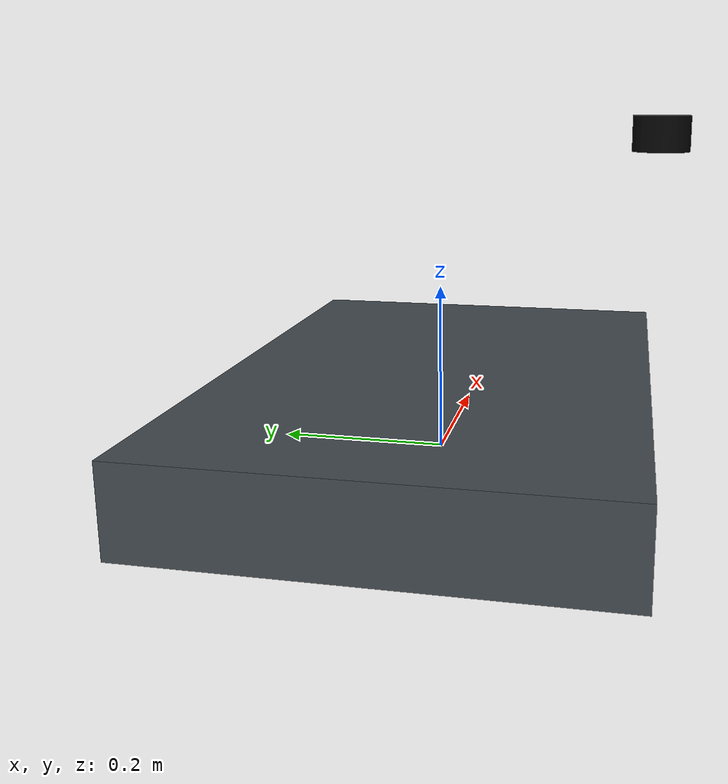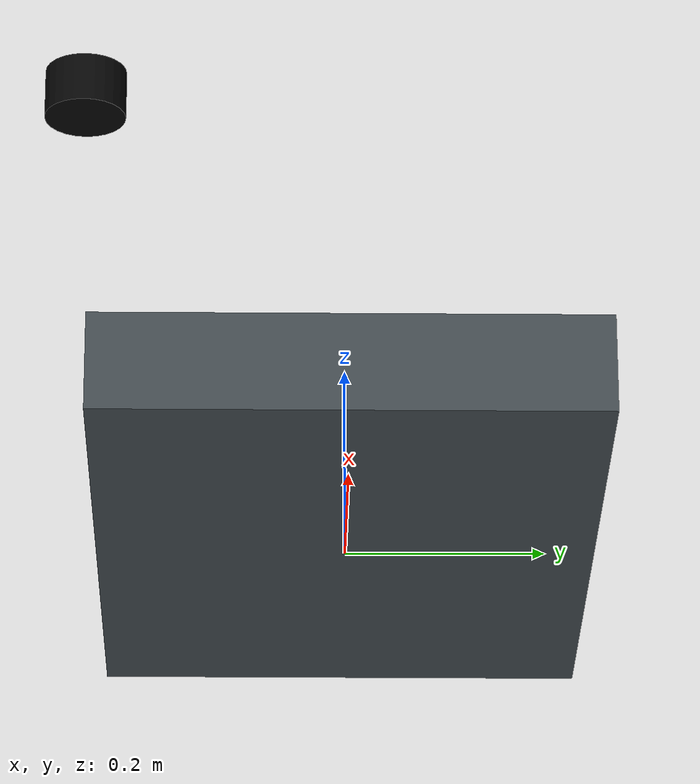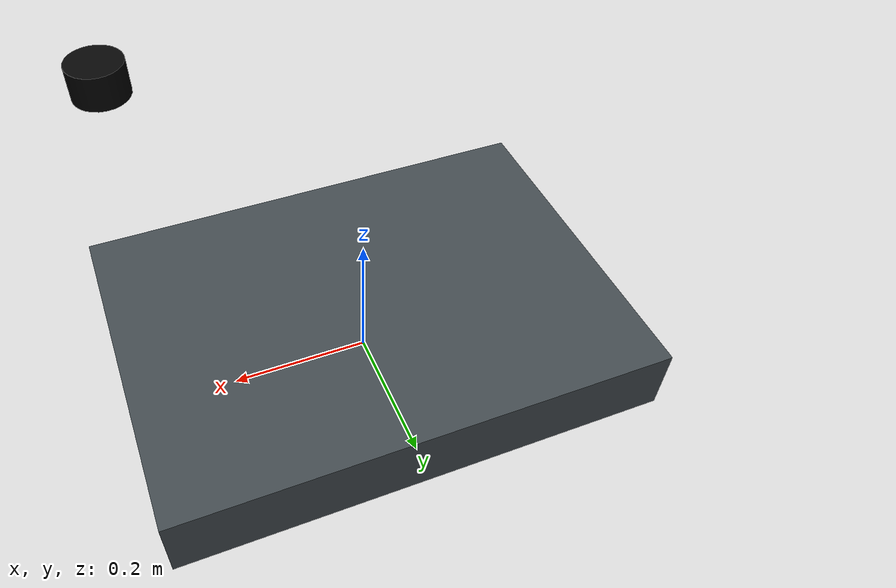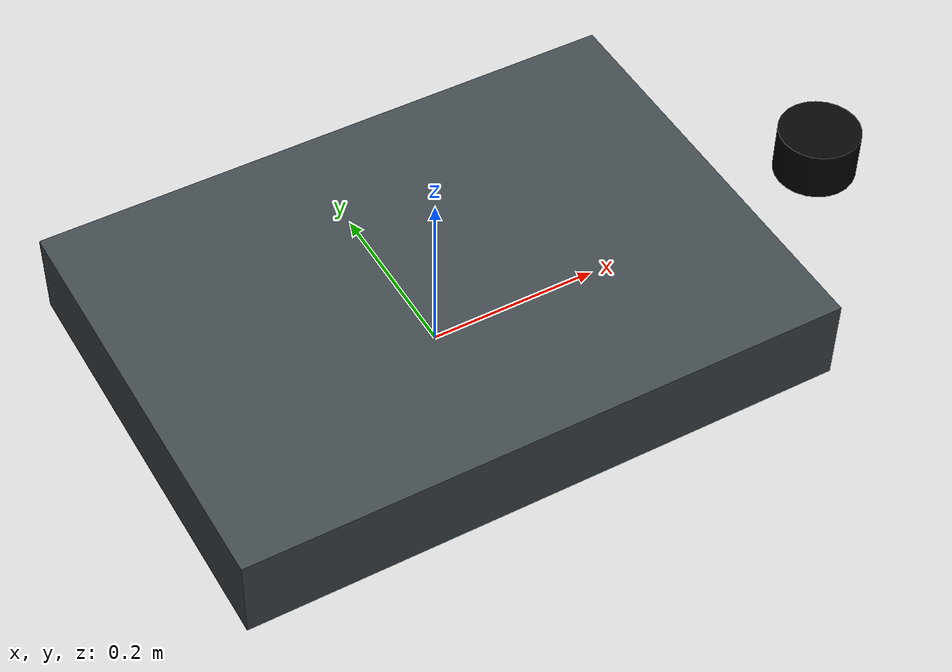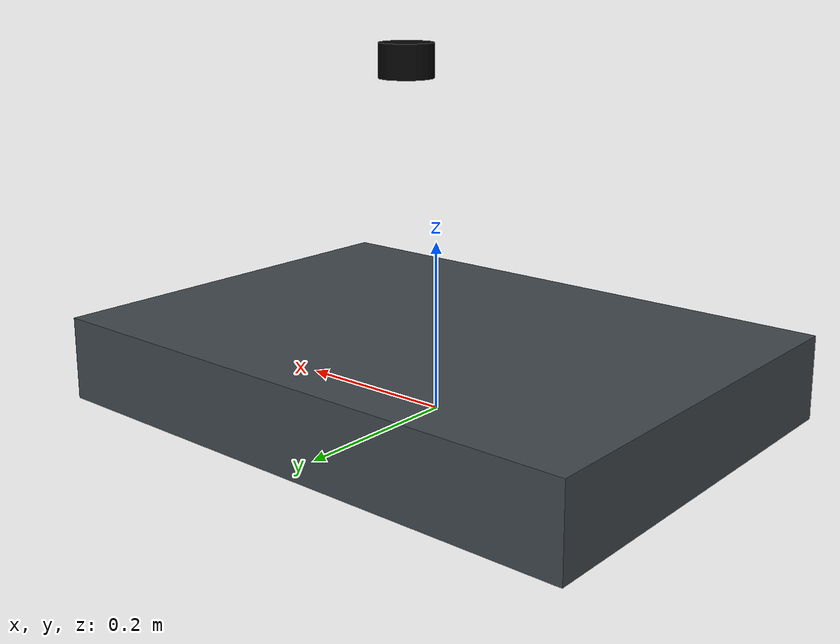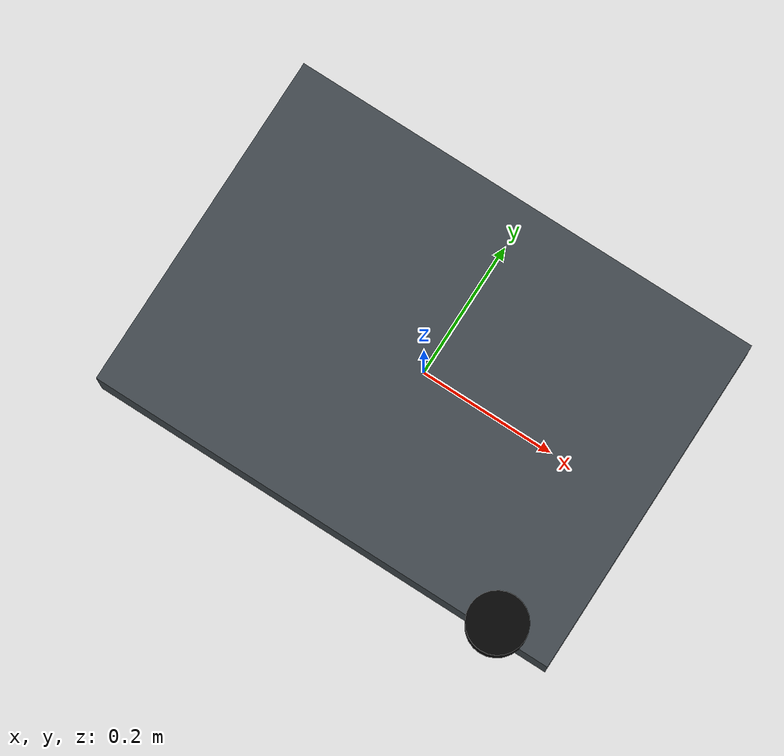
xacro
<?xml version="1.0"?>
<robot name="yantr" xmlns:xacro="http://www.ros.org/wiki/xacro">
  <xacro:property name="laser_x" value="0.2725"/>
  <xacro:property name="laser_y" value="-0.2587"/>
  <xacro:property name="laser_z" value="0.348"/>
  <xacro:property name="laser_yaw" value="-1.5707963267948966"/>
  <xacro:property name="camera_x" value="-0.24983559"/>
  <xacro:property name="camera_y" value="0.02509694"/>
  <xacro:property name="camera_z" value="1.17471883"/>
  <xacro:property name="camera_roll" value="-0.02038875"/>
  <xacro:property name="camera_pitch" value="0.29052212"/>
  <xacro:property name="camera_yaw" value="-0.03271153"/>
  <xacro:property name="t265_pose_x" value="0.325974595"/>
  <xacro:property name="t265_pose_y" value="-0.1154934761"/>
  <xacro:property name="t265_pose_z" value="0.2629087231"/>
  <xacro:property name="t265_pose_roll" value="0"/>
  <xacro:property name="t265_pose_pitch" value="0"/>
  <xacro:property name="t265_pose_yaw" value="0"/>

  <link name="base_link">
    <visual>
      <origin xyz="0 0 0.05" rpy="0 0 0"/>
      <geometry>
        <box size="0.7 0.5 0.1"/>
      </geometry>
      <material name="base_gray">
        <color rgba="0.25 0.28 0.30 1.0"/>
      </material>
    </visual>
  </link>

  <joint name="base_laser_joint" type="fixed">
    <parent link="base_link"/>
    <child link="base_laser"/>
    <origin xyz="${laser_x} ${laser_y} ${laser_z}" rpy="0 0 ${laser_yaw}"/>
  </joint>

  <link name="base_laser">
    <visual>
      <origin xyz="0 0 0.025" rpy="0 0 0"/>
      <geometry>
        <cylinder radius="0.04" length="0.05"/>
      </geometry>
      <material name="laser_black">
        <color rgba="0.02 0.02 0.02 1.0"/>
      </material>
    </visual>
  </link>

  <joint name="base_camera_joint" type="fixed">
    <parent link="base_link"/>
    <child link="camera_link"/>
    <origin xyz="${camera_x} ${camera_y} ${camera_z}"
            rpy="${camera_roll} ${camera_pitch} ${camera_yaw}"/>
  </joint>

  <link name="camera_link"/>

  <joint name="base_t265_pose_joint" type="fixed">
    <parent link="base_link"/>
    <child link="t265_pose_frame"/>
    <origin xyz="${t265_pose_x} ${t265_pose_y} ${t265_pose_z}"
            rpy="${t265_pose_roll} ${t265_pose_pitch} ${t265_pose_yaw}"/>
  </joint>

  <link name="t265_pose_frame"/>

  <joint name="t265_pose_frame_alias_joint" type="fixed">
    <parent link="t265_pose_frame"/>
    <child link="tf_launch_ns/pose_frame"/>
    <origin xyz="0 0 0" rpy="0 0 0"/>
  </joint>

  <link name="tf_launch_ns/pose_frame"/>
</robot>
